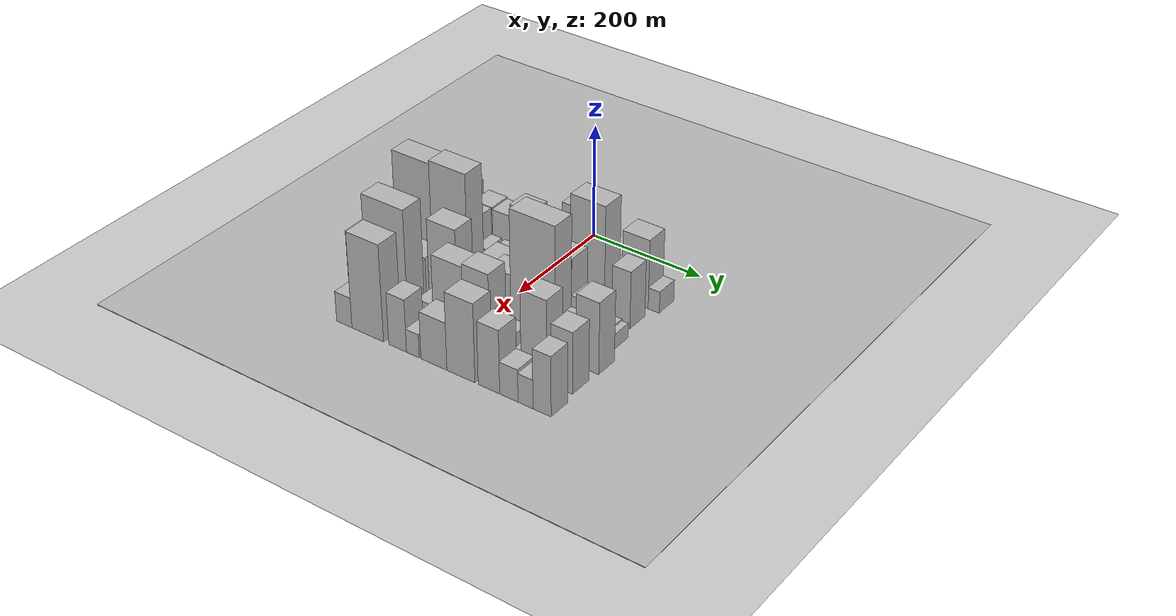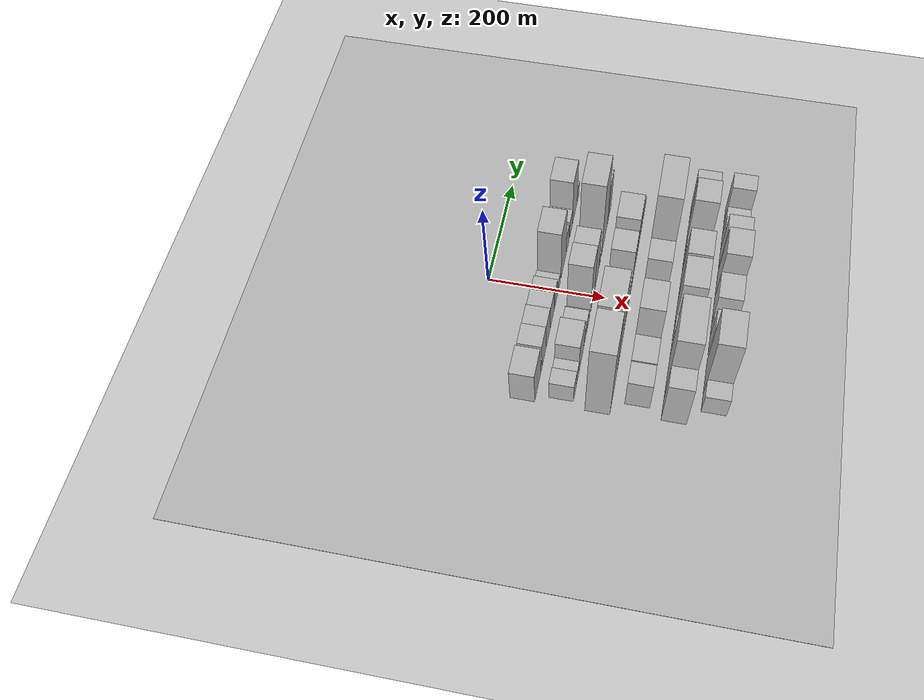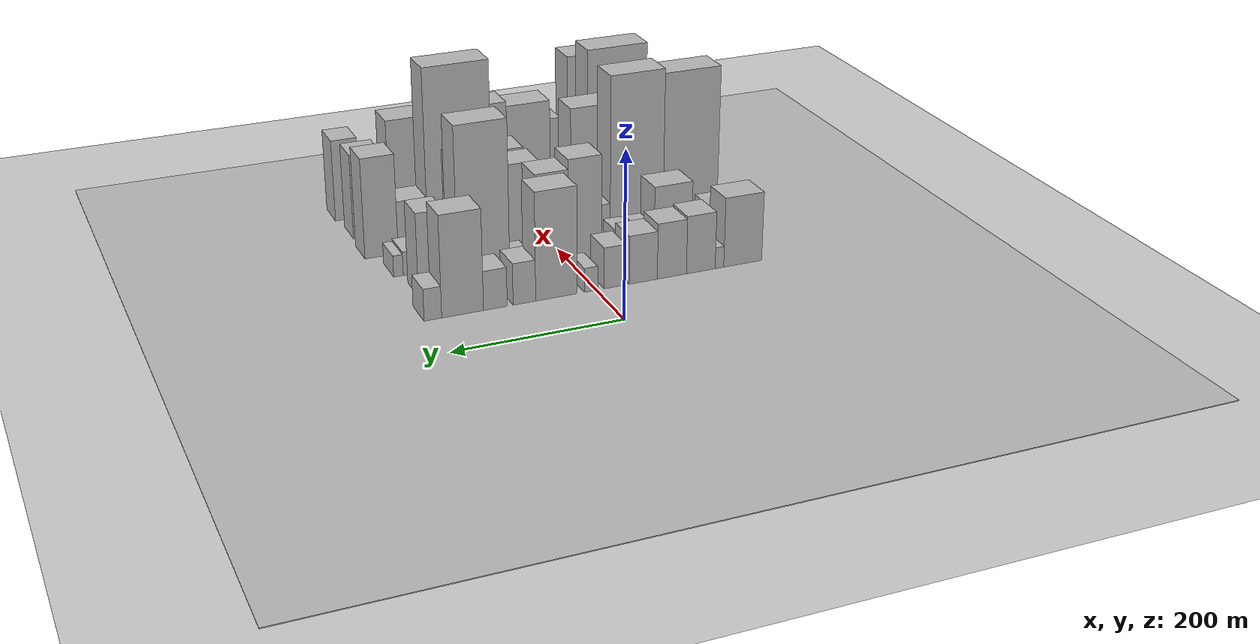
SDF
<sdf version="1.6">
 <world name="default">
  <include><name>ground_plane_1</name><uri>model://HANNAS_ground_plane</uri></include>
  <include>
   <name>ground_plane_2</name>
   <uri>model://HANNAS_ground_plane</uri>
   <pose>100 0 0  0 0 0</pose>
  </include>
  <model name="building_25">
   <static>1</static>
   <pose>100.0000 -183.9872 0 0.000000 0.000000 0.000000</pose>
   <link name="link">
    <pose>0 0 43.50 0 0 0</pose>
    <collision name="collision"><geometry><box><size>40.0000 49.1678 87.0000</size></box></geometry></collision>
    <visual name="visual">
     <cast_shadows>0</cast_shadows>
     <geometry><box><size>40.0000 49.1678 87.0000</size></box></geometry>
     <material>
      <script>
       <uri>model://HANNAS_wall/materials/scripts</uri>
       <uri>model://HANNAS_wall/materials/textures</uri>
       <name>vrc/HANNAS_wall</name>
      </script>
     </material>
    </visual>
   </link>
  </model>
  <model name="building_26">
   <static>1</static>
   <pose>100.0000 -153.9089 0 0.000000 0.000000 0.000000</pose>
   <link name="link">
    <pose>0 0 13.50 0 0 0</pose>
    <collision name="collision"><geometry><box><size>40.0000 10.9887 27.0000</size></box></geometry></collision>
    <visual name="visual">
     <cast_shadows>0</cast_shadows>
     <geometry><box><size>40.0000 10.9887 27.0000</size></box></geometry>
     <material>
      <script>
       <uri>model://HANNAS_wall/materials/scripts</uri>
       <uri>model://HANNAS_wall/materials/textures</uri>
       <name>vrc/HANNAS_wall</name>
      </script>
     </material>
    </visual>
   </link>
  </model>
  <model name="building_27">
   <static>1</static>
   <pose>100.0000 -130.0910 0 0.000000 0.000000 0.000000</pose>
   <link name="link">
    <pose>0 0 36.00 0 0 0</pose>
    <collision name="collision"><geometry><box><size>40.0000 36.6471 72.0000</size></box></geometry></collision>
    <visual name="visual">
     <cast_shadows>0</cast_shadows>
     <geometry><box><size>40.0000 36.6471 72.0000</size></box></geometry>
     <material>
      <script>
       <uri>model://HANNAS_wall/materials/scripts</uri>
       <uri>model://HANNAS_wall/materials/textures</uri>
       <name>vrc/HANNAS_wall</name>
      </script>
     </material>
    </visual>
   </link>
  </model>
  <model name="building_28">
   <static>1</static>
   <pose>100.0000 -93.4627 0 0.000000 0.000000 0.000000</pose>
   <link name="link">
    <pose>0 0 34.50 0 0 0</pose>
    <collision name="collision"><geometry><box><size>40.0000 36.6096 69.0000</size></box></geometry></collision>
    <visual name="visual">
     <cast_shadows>0</cast_shadows>
     <geometry><box><size>40.0000 36.6096 69.0000</size></box></geometry>
     <material>
      <script>
       <uri>model://HANNAS_wall/materials/scripts</uri>
       <uri>model://HANNAS_wall/materials/textures</uri>
       <name>vrc/HANNAS_wall</name>
      </script>
     </material>
    </visual>
   </link>
  </model>
  <model name="building_29">
   <static>1</static>
   <pose>100.0000 -57.6574 0 0.000000 0.000000 0.000000</pose>
   <link name="link">
    <pose>0 0 30.00 0 0 0</pose>
    <collision name="collision"><geometry><box><size>40.0000 35.0009 60.0000</size></box></geometry></collision>
    <visual name="visual">
     <cast_shadows>0</cast_shadows>
     <geometry><box><size>40.0000 35.0009 60.0000</size></box></geometry>
     <material>
      <script>
       <uri>model://HANNAS_wall/materials/scripts</uri>
       <uri>model://HANNAS_wall/materials/textures</uri>
       <name>vrc/HANNAS_wall</name>
      </script>
     </material>
    </visual>
   </link>
  </model>
  <model name="building_30">
   <static>1</static>
   <pose>100.0000 -22.7668 0 0.000000 0.000000 0.000000</pose>
   <link name="link">
    <pose>0 0 25.50 0 0 0</pose>
    <collision name="collision"><geometry><box><size>40.0000 26.7801 51.0000</size></box></geometry></collision>
    <visual name="visual">
     <cast_shadows>0</cast_shadows>
     <geometry><box><size>40.0000 26.7801 51.0000</size></box></geometry>
     <material>
      <script>
       <uri>model://HANNAS_wall/materials/scripts</uri>
       <uri>model://HANNAS_wall/materials/textures</uri>
       <name>vrc/HANNAS_wall</name>
      </script>
     </material>
    </visual>
   </link>
  </model>
  <model name="building_31">
   <static>1</static>
   <pose>100.0000 6.6735 0 0.000000 0.000000 0.000000</pose>
   <link name="link">
    <pose>0 0 15.00 0 0 0</pose>
    <collision name="collision"><geometry><box><size>40.0000 16.1005 30.0000</size></box></geometry></collision>
    <visual name="visual">
     <cast_shadows>0</cast_shadows>
     <geometry><box><size>40.0000 16.1005 30.0000</size></box></geometry>
     <material>
      <script>
       <uri>model://HANNAS_wall/materials/scripts</uri>
       <uri>model://HANNAS_wall/materials/textures</uri>
       <name>vrc/HANNAS_wall</name>
      </script>
     </material>
    </visual>
   </link>
  </model>
  <model name="building_32">
   <static>1</static>
   <pose>100.0000 48.6049 0 0.000000 0.000000 0.000000</pose>
   <link name="link">
    <pose>0 0 66.00 0 0 0</pose>
    <collision name="collision"><geometry><box><size>40.0000 49.7623 132.0000</size></box></geometry></collision>
    <visual name="visual">
     <cast_shadows>0</cast_shadows>
     <geometry><box><size>40.0000 49.7623 132.0000</size></box></geometry>
     <material>
      <script>
       <uri>model://HANNAS_wall/materials/scripts</uri>
       <uri>model://HANNAS_wall/materials/textures</uri>
       <name>vrc/HANNAS_wall</name>
      </script>
     </material>
    </visual>
   </link>
  </model>
  <model name="building_33">
   <static>1</static>
   <pose>100.0000 86.8813 0 0.000000 0.000000 0.000000</pose>
   <link name="link">
    <pose>0 0 25.50 0 0 0</pose>
    <collision name="collision"><geometry><box><size>40.0000 26.7904 51.0000</size></box></geometry></collision>
    <visual name="visual">
     <cast_shadows>0</cast_shadows>
     <geometry><box><size>40.0000 26.7904 51.0000</size></box></geometry>
     <material>
      <script>
       <uri>model://HANNAS_wall/materials/scripts</uri>
       <uri>model://HANNAS_wall/materials/textures</uri>
       <name>vrc/HANNAS_wall</name>
      </script>
     </material>
    </visual>
   </link>
  </model>
  <model name="building_34">
   <static>1</static>
   <pose>100.0000 121.1763 0 0.000000 0.000000 0.000000</pose>
   <link name="link">
    <pose>0 0 24.00 0 0 0</pose>
    <collision name="collision"><geometry><box><size>40.0000 27.7996 48.0000</size></box></geometry></collision>
    <visual name="visual">
     <cast_shadows>0</cast_shadows>
     <geometry><box><size>40.0000 27.7996 48.0000</size></box></geometry>
     <material>
      <script>
       <uri>model://HANNAS_wall/materials/scripts</uri>
       <uri>model://HANNAS_wall/materials/textures</uri>
       <name>vrc/HANNAS_wall</name>
      </script>
     </material>
    </visual>
   </link>
  </model>
  <model name="building_35">
   <static>1</static>
   <pose>100.0000 159.3019 0 0.000000 0.000000 0.000000</pose>
   <link name="link">
    <pose>0 0 61.50 0 0 0</pose>
    <collision name="collision"><geometry><box><size>40.0000 48.4516 123.0000</size></box></geometry></collision>
    <visual name="visual">
     <cast_shadows>0</cast_shadows>
     <geometry><box><size>40.0000 48.4516 123.0000</size></box></geometry>
     <material>
      <script>
       <uri>model://HANNAS_wall/materials/scripts</uri>
       <uri>model://HANNAS_wall/materials/textures</uri>
       <name>vrc/HANNAS_wall</name>
      </script>
     </material>
    </visual>
   </link>
  </model>
  <model name="building_36">
   <static>1</static>
   <pose>100.0000 193.6291 0 0.000000 0.000000 0.000000</pose>
   <link name="link">
    <pose>0 0 19.50 0 0 0</pose>
    <collision name="collision"><geometry><box><size>40.0000 20.2027 39.0000</size></box></geometry></collision>
    <visual name="visual">
     <cast_shadows>0</cast_shadows>
     <geometry><box><size>40.0000 20.2027 39.0000</size></box></geometry>
     <material>
      <script>
       <uri>model://HANNAS_wall/materials/scripts</uri>
       <uri>model://HANNAS_wall/materials/textures</uri>
       <name>vrc/HANNAS_wall</name>
      </script>
     </material>
    </visual>
   </link>
  </model>
  <model name="building_82">
   <static>1</static>
   <pose>160.0000 -182.8963 0 0.000000 0.000000 0.000000</pose>
   <link name="link">
    <pose>0 0 25.50 0 0 0</pose>
    <collision name="collision"><geometry><box><size>40.0000 27.9101 51.0000</size></box></geometry></collision>
    <visual name="visual">
     <cast_shadows>0</cast_shadows>
     <geometry><box><size>40.0000 27.9101 51.0000</size></box></geometry>
     <material>
      <script>
       <uri>model://HANNAS_wall/materials/scripts</uri>
       <uri>model://HANNAS_wall/materials/textures</uri>
       <name>vrc/HANNAS_wall</name>
      </script>
     </material>
    </visual>
   </link>
  </model>
  <model name="building_83">
   <static>1</static>
   <pose>160.0000 -157.7309 0 0.000000 0.000000 0.000000</pose>
   <link name="link">
    <pose>0 0 21.00 0 0 0</pose>
    <collision name="collision"><geometry><box><size>40.0000 22.4206 42.0000</size></box></geometry></collision>
    <visual name="visual">
     <cast_shadows>0</cast_shadows>
     <geometry><box><size>40.0000 22.4206 42.0000</size></box></geometry>
     <material>
      <script>
       <uri>model://HANNAS_wall/materials/scripts</uri>
       <uri>model://HANNAS_wall/materials/textures</uri>
       <name>vrc/HANNAS_wall</name>
      </script>
     </material>
    </visual>
   </link>
  </model>
  <model name="building_84">
   <static>1</static>
   <pose>160.0000 -122.2274 0 0.000000 0.000000 0.000000</pose>
   <link name="link">
    <pose>0 0 43.50 0 0 0</pose>
    <collision name="collision"><geometry><box><size>40.0000 48.5863 87.0000</size></box></geometry></collision>
    <visual name="visual">
     <cast_shadows>0</cast_shadows>
     <geometry><box><size>40.0000 48.5863 87.0000</size></box></geometry>
     <material>
      <script>
       <uri>model://HANNAS_wall/materials/scripts</uri>
       <uri>model://HANNAS_wall/materials/textures</uri>
       <name>vrc/HANNAS_wall</name>
      </script>
     </material>
    </visual>
   </link>
  </model>
  <model name="building_85">
   <static>1</static>
   <pose>160.0000 -87.8632 0 0.000000 0.000000 0.000000</pose>
   <link name="link">
    <pose>0 0 19.50 0 0 0</pose>
    <collision name="collision"><geometry><box><size>40.0000 20.1421 39.0000</size></box></geometry></collision>
    <visual name="visual">
     <cast_shadows>0</cast_shadows>
     <geometry><box><size>40.0000 20.1421 39.0000</size></box></geometry>
     <material>
      <script>
       <uri>model://HANNAS_wall/materials/scripts</uri>
       <uri>model://HANNAS_wall/materials/textures</uri>
       <name>vrc/HANNAS_wall</name>
      </script>
     </material>
    </visual>
   </link>
  </model>
  <model name="building_86">
   <static>1</static>
   <pose>160.0000 -60.9558 0 0.000000 0.000000 0.000000</pose>
   <link name="link">
    <pose>0 0 19.50 0 0 0</pose>
    <collision name="collision"><geometry><box><size>40.0000 21.6727 39.0000</size></box></geometry></collision>
    <visual name="visual">
     <cast_shadows>0</cast_shadows>
     <geometry><box><size>40.0000 21.6727 39.0000</size></box></geometry>
     <material>
      <script>
       <uri>model://HANNAS_wall/materials/scripts</uri>
       <uri>model://HANNAS_wall/materials/textures</uri>
       <name>vrc/HANNAS_wall</name>
      </script>
     </material>
    </visual>
   </link>
  </model>
  <model name="building_87">
   <static>1</static>
   <pose>160.0000 -45.2092 0 0.000000 0.000000 0.000000</pose>
   <link name="link">
    <pose>0 0 12.00 0 0 0</pose>
    <collision name="collision"><geometry><box><size>40.0000 9.8205 24.0000</size></box></geometry></collision>
    <visual name="visual">
     <cast_shadows>0</cast_shadows>
     <geometry><box><size>40.0000 9.8205 24.0000</size></box></geometry>
     <material>
      <script>
       <uri>model://HANNAS_wall/materials/scripts</uri>
       <uri>model://HANNAS_wall/materials/textures</uri>
       <name>vrc/HANNAS_wall</name>
      </script>
     </material>
    </visual>
   </link>
  </model>
  <model name="building_88">
   <static>1</static>
   <pose>160.0000 -10.5048 0 0.000000 0.000000 0.000000</pose>
   <link name="link">
    <pose>0 0 69.00 0 0 0</pose>
    <collision name="collision"><geometry><box><size>40.0000 41.5882 138.0000</size></box></geometry></collision>
    <visual name="visual">
     <cast_shadows>0</cast_shadows>
     <geometry><box><size>40.0000 41.5882 138.0000</size></box></geometry>
     <material>
      <script>
       <uri>model://HANNAS_wall/materials/scripts</uri>
       <uri>model://HANNAS_wall/materials/textures</uri>
       <name>vrc/HANNAS_wall</name>
      </script>
     </material>
    </visual>
   </link>
  </model>
  <model name="building_89">
   <static>1</static>
   <pose>160.0000 30.4153 0 0.000000 0.000000 0.000000</pose>
   <link name="link">
    <pose>0 0 63.00 0 0 0</pose>
    <collision name="collision"><geometry><box><size>40.0000 40.2521 126.0000</size></box></geometry></collision>
    <visual name="visual">
     <cast_shadows>0</cast_shadows>
     <geometry><box><size>40.0000 40.2521 126.0000</size></box></geometry>
     <material>
      <script>
       <uri>model://HANNAS_wall/materials/scripts</uri>
       <uri>model://HANNAS_wall/materials/textures</uri>
       <name>vrc/HANNAS_wall</name>
      </script>
     </material>
    </visual>
   </link>
  </model>
  <model name="building_90">
   <static>1</static>
   <pose>160.0000 64.2063 0 0.000000 0.000000 0.000000</pose>
   <link name="link">
    <pose>0 0 15.00 0 0 0</pose>
    <collision name="collision"><geometry><box><size>40.0000 17.3297 30.0000</size></box></geometry></collision>
    <visual name="visual">
     <cast_shadows>0</cast_shadows>
     <geometry><box><size>40.0000 17.3297 30.0000</size></box></geometry>
     <material>
      <script>
       <uri>model://HANNAS_wall/materials/scripts</uri>
       <uri>model://HANNAS_wall/materials/textures</uri>
       <name>vrc/HANNAS_wall</name>
      </script>
     </material>
    </visual>
   </link>
  </model>
  <model name="building_91">
   <static>1</static>
   <pose>160.0000 113.0793 0 0.000000 0.000000 0.000000</pose>
   <link name="link">
    <pose>0 0 99.00 0 0 0</pose>
    <collision name="collision"><geometry><box><size>40.0000 62.4163 198.0000</size></box></geometry></collision>
    <visual name="visual">
     <cast_shadows>0</cast_shadows>
     <geometry><box><size>40.0000 62.4163 198.0000</size></box></geometry>
     <material>
      <script>
       <uri>model://HANNAS_wall/materials/scripts</uri>
       <uri>model://HANNAS_wall/materials/textures</uri>
       <name>vrc/HANNAS_wall</name>
      </script>
     </material>
    </visual>
   </link>
  </model>
  <model name="building_92">
   <static>1</static>
   <pose>160.0000 152.6669 0 0.000000 0.000000 0.000000</pose>
   <link name="link">
    <pose>0 0 12.00 0 0 0</pose>
    <collision name="collision"><geometry><box><size>40.0000 10.7589 24.0000</size></box></geometry></collision>
    <visual name="visual">
     <cast_shadows>0</cast_shadows>
     <geometry><box><size>40.0000 10.7589 24.0000</size></box></geometry>
     <material>
      <script>
       <uri>model://HANNAS_wall/materials/scripts</uri>
       <uri>model://HANNAS_wall/materials/textures</uri>
       <name>vrc/HANNAS_wall</name>
      </script>
     </material>
    </visual>
   </link>
  </model>
  <model name="building_93">
   <static>1</static>
   <pose>160.0000 174.5098 0 0.000000 0.000000 0.000000</pose>
   <link name="link">
    <pose>0 0 51.00 0 0 0</pose>
    <collision name="collision"><geometry><box><size>40.0000 32.9269 102.0000</size></box></geometry></collision>
    <visual name="visual">
     <cast_shadows>0</cast_shadows>
     <geometry><box><size>40.0000 32.9269 102.0000</size></box></geometry>
     <material>
      <script>
       <uri>model://HANNAS_wall/materials/scripts</uri>
       <uri>model://HANNAS_wall/materials/textures</uri>
       <name>vrc/HANNAS_wall</name>
      </script>
     </material>
    </visual>
   </link>
  </model>
  <model name="building_137">
   <static>1</static>
   <pose>220.0000 -172.5578 0 0.000000 0.000000 0.000000</pose>
   <link name="link">
    <pose>0 0 100.50 0 0 0</pose>
    <collision name="collision"><geometry><box><size>40.0000 72.0038 201.0000</size></box></geometry></collision>
    <visual name="visual">
     <cast_shadows>0</cast_shadows>
     <geometry><box><size>40.0000 72.0038 201.0000</size></box></geometry>
     <material>
      <script>
       <uri>model://HANNAS_wall/materials/scripts</uri>
       <uri>model://HANNAS_wall/materials/textures</uri>
       <name>vrc/HANNAS_wall</name>
      </script>
     </material>
    </visual>
   </link>
  </model>
  <model name="building_138">
   <static>1</static>
   <pose>220.0000 -102.0836 0 0.000000 0.000000 0.000000</pose>
   <link name="link">
    <pose>0 0 103.50 0 0 0</pose>
    <collision name="collision"><geometry><box><size>40.0000 68.9446 207.0000</size></box></geometry></collision>
    <visual name="visual">
     <cast_shadows>0</cast_shadows>
     <geometry><box><size>40.0000 68.9446 207.0000</size></box></geometry>
     <material>
      <script>
       <uri>model://HANNAS_wall/materials/scripts</uri>
       <uri>model://HANNAS_wall/materials/textures</uri>
       <name>vrc/HANNAS_wall</name>
      </script>
     </material>
    </visual>
   </link>
  </model>
  <model name="building_139">
   <static>1</static>
   <pose>220.0000 -54.1604 0 0.000000 0.000000 0.000000</pose>
   <link name="link">
    <pose>0 0 24.00 0 0 0</pose>
    <collision name="collision"><geometry><box><size>40.0000 26.9018 48.0000</size></box></geometry></collision>
    <visual name="visual">
     <cast_shadows>0</cast_shadows>
     <geometry><box><size>40.0000 26.9018 48.0000</size></box></geometry>
     <material>
      <script>
       <uri>model://HANNAS_wall/materials/scripts</uri>
       <uri>model://HANNAS_wall/materials/textures</uri>
       <name>vrc/HANNAS_wall</name>
      </script>
     </material>
    </visual>
   </link>
  </model>
  <model name="building_140">
   <static>1</static>
   <pose>220.0000 -20.4770 0 0.000000 0.000000 0.000000</pose>
   <link name="link">
    <pose>0 0 39.00 0 0 0</pose>
    <collision name="collision"><geometry><box><size>40.0000 40.4650 78.0000</size></box></geometry></collision>
    <visual name="visual">
     <cast_shadows>0</cast_shadows>
     <geometry><box><size>40.0000 40.4650 78.0000</size></box></geometry>
     <material>
      <script>
       <uri>model://HANNAS_wall/materials/scripts</uri>
       <uri>model://HANNAS_wall/materials/textures</uri>
       <name>vrc/HANNAS_wall</name>
      </script>
     </material>
    </visual>
   </link>
  </model>
  <model name="building_141">
   <static>1</static>
   <pose>220.0000 12.1507 0 0.000000 0.000000 0.000000</pose>
   <link name="link">
    <pose>0 0 10.50 0 0 0</pose>
    <collision name="collision"><geometry><box><size>40.0000 8.7904 21.0000</size></box></geometry></collision>
    <visual name="visual">
     <cast_shadows>0</cast_shadows>
     <geometry><box><size>40.0000 8.7904 21.0000</size></box></geometry>
     <material>
      <script>
       <uri>model://HANNAS_wall/materials/scripts</uri>
       <uri>model://HANNAS_wall/materials/textures</uri>
       <name>vrc/HANNAS_wall</name>
      </script>
     </material>
    </visual>
   </link>
  </model>
  <model name="building_142">
   <static>1</static>
   <pose>220.0000 43.4058 0 0.000000 0.000000 0.000000</pose>
   <link name="link">
    <pose>0 0 58.50 0 0 0</pose>
    <collision name="collision"><geometry><box><size>40.0000 41.7199 117.0000</size></box></geometry></collision>
    <visual name="visual">
     <cast_shadows>0</cast_shadows>
     <geometry><box><size>40.0000 41.7199 117.0000</size></box></geometry>
     <material>
      <script>
       <uri>model://HANNAS_wall/materials/scripts</uri>
       <uri>model://HANNAS_wall/materials/textures</uri>
       <name>vrc/HANNAS_wall</name>
      </script>
     </material>
    </visual>
   </link>
  </model>
  <model name="building_143">
   <static>1</static>
   <pose>220.0000 69.8577 0 0.000000 0.000000 0.000000</pose>
   <link name="link">
    <pose>0 0 13.50 0 0 0</pose>
    <collision name="collision"><geometry><box><size>40.0000 11.1839 27.0000</size></box></geometry></collision>
    <visual name="visual">
     <cast_shadows>0</cast_shadows>
     <geometry><box><size>40.0000 11.1839 27.0000</size></box></geometry>
     <material>
      <script>
       <uri>model://HANNAS_wall/materials/scripts</uri>
       <uri>model://HANNAS_wall/materials/textures</uri>
       <name>vrc/HANNAS_wall</name>
      </script>
     </material>
    </visual>
   </link>
  </model>
  <model name="building_144">
   <static>1</static>
   <pose>220.0000 101.0948 0 0.000000 0.000000 0.000000</pose>
   <link name="link">
    <pose>0 0 66.00 0 0 0</pose>
    <collision name="collision"><geometry><box><size>40.0000 51.2902 132.0000</size></box></geometry></collision>
    <visual name="visual">
     <cast_shadows>0</cast_shadows>
     <geometry><box><size>40.0000 51.2902 132.0000</size></box></geometry>
     <material>
      <script>
       <uri>model://HANNAS_wall/materials/scripts</uri>
       <uri>model://HANNAS_wall/materials/textures</uri>
       <name>vrc/HANNAS_wall</name>
      </script>
     </material>
    </visual>
   </link>
  </model>
  <model name="building_145">
   <static>1</static>
   <pose>220.0000 145.7278 0 0.000000 0.000000 0.000000</pose>
   <link name="link">
    <pose>0 0 34.50 0 0 0</pose>
    <collision name="collision"><geometry><box><size>40.0000 37.9758 69.0000</size></box></geometry></collision>
    <visual name="visual">
     <cast_shadows>0</cast_shadows>
     <geometry><box><size>40.0000 37.9758 69.0000</size></box></geometry>
     <material>
      <script>
       <uri>model://HANNAS_wall/materials/scripts</uri>
       <uri>model://HANNAS_wall/materials/textures</uri>
       <name>vrc/HANNAS_wall</name>
      </script>
     </material>
    </visual>
   </link>
  </model>
  <model name="building_146">
   <static>1</static>
   <pose>220.0000 181.9038 0 0.000000 0.000000 0.000000</pose>
   <link name="link">
    <pose>0 0 15.00 0 0 0</pose>
    <collision name="collision"><geometry><box><size>40.0000 16.3762 30.0000</size></box></geometry></collision>
    <visual name="visual">
     <cast_shadows>0</cast_shadows>
     <geometry><box><size>40.0000 16.3762 30.0000</size></box></geometry>
     <material>
      <script>
       <uri>model://HANNAS_wall/materials/scripts</uri>
       <uri>model://HANNAS_wall/materials/textures</uri>
       <name>vrc/HANNAS_wall</name>
      </script>
     </material>
    </visual>
   </link>
  </model>
  <model name="building_147">
   <static>1</static>
   <pose>220.0000 195.8134 0 0.000000 0.000000 0.000000</pose>
   <link name="link">
    <pose>0 0 13.50 0 0 0</pose>
    <collision name="collision"><geometry><box><size>40.0000 11.4429 27.0000</size></box></geometry></collision>
    <visual name="visual">
     <cast_shadows>0</cast_shadows>
     <geometry><box><size>40.0000 11.4429 27.0000</size></box></geometry>
     <material>
      <script>
       <uri>model://HANNAS_wall/materials/scripts</uri>
       <uri>model://HANNAS_wall/materials/textures</uri>
       <name>vrc/HANNAS_wall</name>
      </script>
     </material>
    </visual>
   </link>
  </model>
  <model name="building_190">
   <static>1</static>
   <pose>280.0000 -166.5351 0 0.000000 0.000000 0.000000</pose>
   <link name="link">
    <pose>0 0 37.50 0 0 0</pose>
    <collision name="collision"><geometry><box><size>40.0000 38.1876 75.0000</size></box></geometry></collision>
    <visual name="visual">
     <cast_shadows>0</cast_shadows>
     <geometry><box><size>40.0000 38.1876 75.0000</size></box></geometry>
     <material>
      <script>
       <uri>model://HANNAS_wall/materials/scripts</uri>
       <uri>model://HANNAS_wall/materials/textures</uri>
       <name>vrc/HANNAS_wall</name>
      </script>
     </material>
    </visual>
   </link>
  </model>
  <model name="building_191">
   <static>1</static>
   <pose>280.0000 -124.1288 0 0.000000 0.000000 0.000000</pose>
   <link name="link">
    <pose>0 0 39.00 0 0 0</pose>
    <collision name="collision"><geometry><box><size>40.0000 46.6250 78.0000</size></box></geometry></collision>
    <visual name="visual">
     <cast_shadows>0</cast_shadows>
     <geometry><box><size>40.0000 46.6250 78.0000</size></box></geometry>
     <material>
      <script>
       <uri>model://HANNAS_wall/materials/scripts</uri>
       <uri>model://HANNAS_wall/materials/textures</uri>
       <name>vrc/HANNAS_wall</name>
      </script>
     </material>
    </visual>
   </link>
  </model>
  <model name="building_192">
   <static>1</static>
   <pose>280.0000 -68.1328 0 0.000000 0.000000 0.000000</pose>
   <link name="link">
    <pose>0 0 75.00 0 0 0</pose>
    <collision name="collision"><geometry><box><size>40.0000 53.3670 150.0000</size></box></geometry></collision>
    <visual name="visual">
     <cast_shadows>0</cast_shadows>
     <geometry><box><size>40.0000 53.3670 150.0000</size></box></geometry>
     <material>
      <script>
       <uri>model://HANNAS_wall/materials/scripts</uri>
       <uri>model://HANNAS_wall/materials/textures</uri>
       <name>vrc/HANNAS_wall</name>
      </script>
     </material>
    </visual>
   </link>
  </model>
  <model name="building_193">
   <static>1</static>
   <pose>280.0000 -24.0288 0 0.000000 0.000000 0.000000</pose>
   <link name="link">
    <pose>0 0 22.50 0 0 0</pose>
    <collision name="collision"><geometry><box><size>40.0000 22.8409 45.0000</size></box></geometry></collision>
    <visual name="visual">
     <cast_shadows>0</cast_shadows>
     <geometry><box><size>40.0000 22.8409 45.0000</size></box></geometry>
     <material>
      <script>
       <uri>model://HANNAS_wall/materials/scripts</uri>
       <uri>model://HANNAS_wall/materials/textures</uri>
       <name>vrc/HANNAS_wall</name>
      </script>
     </material>
    </visual>
   </link>
  </model>
  <model name="building_194">
   <static>1</static>
   <pose>280.0000 0.9178 0 0.000000 0.000000 0.000000</pose>
   <link name="link">
    <pose>0 0 27.00 0 0 0</pose>
    <collision name="collision"><geometry><box><size>40.0000 27.0524 54.0000</size></box></geometry></collision>
    <visual name="visual">
     <cast_shadows>0</cast_shadows>
     <geometry><box><size>40.0000 27.0524 54.0000</size></box></geometry>
     <material>
      <script>
       <uri>model://HANNAS_wall/materials/scripts</uri>
       <uri>model://HANNAS_wall/materials/textures</uri>
       <name>vrc/HANNAS_wall</name>
      </script>
     </material>
    </visual>
   </link>
  </model>
  <model name="building_195">
   <static>1</static>
   <pose>280.0000 39.6602 0 0.000000 0.000000 0.000000</pose>
   <link name="link">
    <pose>0 0 55.50 0 0 0</pose>
    <collision name="collision"><geometry><box><size>40.0000 40.4323 111.0000</size></box></geometry></collision>
    <visual name="visual">
     <cast_shadows>0</cast_shadows>
     <geometry><box><size>40.0000 40.4323 111.0000</size></box></geometry>
     <material>
      <script>
       <uri>model://HANNAS_wall/materials/scripts</uri>
       <uri>model://HANNAS_wall/materials/textures</uri>
       <name>vrc/HANNAS_wall</name>
      </script>
     </material>
    </visual>
   </link>
  </model>
  <model name="building_196">
   <static>1</static>
   <pose>280.0000 100.2851 0 0.000000 0.000000 0.000000</pose>
   <link name="link">
    <pose>0 0 112.50 0 0 0</pose>
    <collision name="collision"><geometry><box><size>40.0000 80.8175 225.0000</size></box></geometry></collision>
    <visual name="visual">
     <cast_shadows>0</cast_shadows>
     <geometry><box><size>40.0000 80.8175 225.0000</size></box></geometry>
     <material>
      <script>
       <uri>model://HANNAS_wall/materials/scripts</uri>
       <uri>model://HANNAS_wall/materials/textures</uri>
       <name>vrc/HANNAS_wall</name>
      </script>
     </material>
    </visual>
   </link>
  </model>
  <model name="building_197">
   <static>1</static>
   <pose>280.0000 159.1217 0 0.000000 0.000000 0.000000</pose>
   <link name="link">
    <pose>0 0 33.00 0 0 0</pose>
    <collision name="collision"><geometry><box><size>40.0000 36.8557 66.0000</size></box></geometry></collision>
    <visual name="visual">
     <cast_shadows>0</cast_shadows>
     <geometry><box><size>40.0000 36.8557 66.0000</size></box></geometry>
     <material>
      <script>
       <uri>model://HANNAS_wall/materials/scripts</uri>
       <uri>model://HANNAS_wall/materials/textures</uri>
       <name>vrc/HANNAS_wall</name>
      </script>
     </material>
    </visual>
   </link>
  </model>
  <model name="building_198">
   <static>1</static>
   <pose>280.0000 197.8304 0 0.000000 0.000000 0.000000</pose>
   <link name="link">
    <pose>0 0 63.00 0 0 0</pose>
    <collision name="collision"><geometry><box><size>40.0000 40.5616 126.0000</size></box></geometry></collision>
    <visual name="visual">
     <cast_shadows>0</cast_shadows>
     <geometry><box><size>40.0000 40.5616 126.0000</size></box></geometry>
     <material>
      <script>
       <uri>model://HANNAS_wall/materials/scripts</uri>
       <uri>model://HANNAS_wall/materials/textures</uri>
       <name>vrc/HANNAS_wall</name>
      </script>
     </material>
    </visual>
   </link>
  </model>
  <model name="building_240">
   <static>1</static>
   <pose>340.0000 -184.9934 0 0.000000 0.000000 0.000000</pose>
   <link name="link">
    <pose>0 0 60.00 0 0 0</pose>
    <collision name="collision"><geometry><box><size>40.0000 36.0682 120.0000</size></box></geometry></collision>
    <visual name="visual">
     <cast_shadows>0</cast_shadows>
     <geometry><box><size>40.0000 36.0682 120.0000</size></box></geometry>
     <material>
      <script>
       <uri>model://HANNAS_wall/materials/scripts</uri>
       <uri>model://HANNAS_wall/materials/textures</uri>
       <name>vrc/HANNAS_wall</name>
      </script>
     </material>
    </visual>
   </link>
  </model>
  <model name="building_241">
   <static>1</static>
   <pose>340.0000 -127.4728 0 0.000000 0.000000 0.000000</pose>
   <link name="link">
    <pose>0 0 99.00 0 0 0</pose>
    <collision name="collision"><geometry><box><size>40.0000 78.9730 198.0000</size></box></geometry></collision>
    <visual name="visual">
     <cast_shadows>0</cast_shadows>
     <geometry><box><size>40.0000 78.9730 198.0000</size></box></geometry>
     <material>
      <script>
       <uri>model://HANNAS_wall/materials/scripts</uri>
       <uri>model://HANNAS_wall/materials/textures</uri>
       <name>vrc/HANNAS_wall</name>
      </script>
     </material>
    </visual>
   </link>
  </model>
  <model name="building_242">
   <static>1</static>
   <pose>340.0000 -82.2673 0 0.000000 0.000000 0.000000</pose>
   <link name="link">
    <pose>0 0 12.00 0 0 0</pose>
    <collision name="collision"><geometry><box><size>40.0000 11.4379 24.0000</size></box></geometry></collision>
    <visual name="visual">
     <cast_shadows>0</cast_shadows>
     <geometry><box><size>40.0000 11.4379 24.0000</size></box></geometry>
     <material>
      <script>
       <uri>model://HANNAS_wall/materials/scripts</uri>
       <uri>model://HANNAS_wall/materials/textures</uri>
       <name>vrc/HANNAS_wall</name>
      </script>
     </material>
    </visual>
   </link>
  </model>
  <model name="building_243">
   <static>1</static>
   <pose>340.0000 -53.3140 0 0.000000 0.000000 0.000000</pose>
   <link name="link">
    <pose>0 0 25.50 0 0 0</pose>
    <collision name="collision"><geometry><box><size>40.0000 30.4687 51.0000</size></box></geometry></collision>
    <visual name="visual">
     <cast_shadows>0</cast_shadows>
     <geometry><box><size>40.0000 30.4687 51.0000</size></box></geometry>
     <material>
      <script>
       <uri>model://HANNAS_wall/materials/scripts</uri>
       <uri>model://HANNAS_wall/materials/textures</uri>
       <name>vrc/HANNAS_wall</name>
      </script>
     </material>
    </visual>
   </link>
  </model>
  <model name="building_244">
   <static>1</static>
   <pose>340.0000 -10.0375 0 0.000000 0.000000 0.000000</pose>
   <link name="link">
    <pose>0 0 70.50 0 0 0</pose>
    <collision name="collision"><geometry><box><size>40.0000 56.0843 141.0000</size></box></geometry></collision>
    <visual name="visual">
     <cast_shadows>0</cast_shadows>
     <geometry><box><size>40.0000 56.0843 141.0000</size></box></geometry>
     <material>
      <script>
       <uri>model://HANNAS_wall/materials/scripts</uri>
       <uri>model://HANNAS_wall/materials/textures</uri>
       <name>vrc/HANNAS_wall</name>
      </script>
     </material>
    </visual>
   </link>
  </model>
  <model name="building_245">
   <static>1</static>
   <pose>340.0000 42.0665 0 0.000000 0.000000 0.000000</pose>
   <link name="link">
    <pose>0 0 73.50 0 0 0</pose>
    <collision name="collision"><geometry><box><size>40.0000 48.1237 147.0000</size></box></geometry></collision>
    <visual name="visual">
     <cast_shadows>0</cast_shadows>
     <geometry><box><size>40.0000 48.1237 147.0000</size></box></geometry>
     <material>
      <script>
       <uri>model://HANNAS_wall/materials/scripts</uri>
       <uri>model://HANNAS_wall/materials/textures</uri>
       <name>vrc/HANNAS_wall</name>
      </script>
     </material>
    </visual>
   </link>
  </model>
  <model name="building_246">
   <static>1</static>
   <pose>340.0000 90.7543 0 0.000000 0.000000 0.000000</pose>
   <link name="link">
    <pose>0 0 27.00 0 0 0</pose>
    <collision name="collision"><geometry><box><size>40.0000 29.2520 54.0000</size></box></geometry></collision>
    <visual name="visual">
     <cast_shadows>0</cast_shadows>
     <geometry><box><size>40.0000 29.2520 54.0000</size></box></geometry>
     <material>
      <script>
       <uri>model://HANNAS_wall/materials/scripts</uri>
       <uri>model://HANNAS_wall/materials/textures</uri>
       <name>vrc/HANNAS_wall</name>
      </script>
     </material>
    </visual>
   </link>
  </model>
  <model name="building_247">
   <static>1</static>
   <pose>340.0000 114.2577 0 0.000000 0.000000 0.000000</pose>
   <link name="link">
    <pose>0 0 15.00 0 0 0</pose>
    <collision name="collision"><geometry><box><size>40.0000 17.7548 30.0000</size></box></geometry></collision>
    <visual name="visual">
     <cast_shadows>0</cast_shadows>
     <geometry><box><size>40.0000 17.7548 30.0000</size></box></geometry>
     <material>
      <script>
       <uri>model://HANNAS_wall/materials/scripts</uri>
       <uri>model://HANNAS_wall/materials/textures</uri>
       <name>vrc/HANNAS_wall</name>
      </script>
     </material>
    </visual>
   </link>
  </model>
  <model name="building_248">
   <static>1</static>
   <pose>340.0000 145.9977 0 0.000000 0.000000 0.000000</pose>
   <link name="link">
    <pose>0 0 72.00 0 0 0</pose>
    <collision name="collision"><geometry><box><size>40.0000 45.7251 144.0000</size></box></geometry></collision>
    <visual name="visual">
     <cast_shadows>0</cast_shadows>
     <geometry><box><size>40.0000 45.7251 144.0000</size></box></geometry>
     <material>
      <script>
       <uri>model://HANNAS_wall/materials/scripts</uri>
       <uri>model://HANNAS_wall/materials/textures</uri>
       <name>vrc/HANNAS_wall</name>
      </script>
     </material>
    </visual>
   </link>
  </model>
  <model name="building_249">
   <static>1</static>
   <pose>340.0000 195.8101 0 0.000000 0.000000 0.000000</pose>
   <link name="link">
    <pose>0 0 54.00 0 0 0</pose>
    <collision name="collision"><geometry><box><size>40.0000 37.8998 108.0000</size></box></geometry></collision>
    <visual name="visual">
     <cast_shadows>0</cast_shadows>
     <geometry><box><size>40.0000 37.8998 108.0000</size></box></geometry>
     <material>
      <script>
       <uri>model://HANNAS_wall/materials/scripts</uri>
       <uri>model://HANNAS_wall/materials/textures</uri>
       <name>vrc/HANNAS_wall</name>
      </script>
     </material>
    </visual>
   </link>
  </model>
  <model name="building_293">
   <static>1</static>
   <pose>400.0000 -161.5534 0 0.000000 0.000000 0.000000</pose>
   <link name="link">
    <pose>0 0 27.00 0 0 0</pose>
    <collision name="collision"><geometry><box><size>40.0000 30.2813 54.0000</size></box></geometry></collision>
    <visual name="visual">
     <cast_shadows>0</cast_shadows>
     <geometry><box><size>40.0000 30.2813 54.0000</size></box></geometry>
     <material>
      <script>
       <uri>model://HANNAS_wall/materials/scripts</uri>
       <uri>model://HANNAS_wall/materials/textures</uri>
       <name>vrc/HANNAS_wall</name>
      </script>
     </material>
    </visual>
   </link>
  </model>
  <model name="building_294">
   <static>1</static>
   <pose>400.0000 -115.8240 0 0.000000 0.000000 0.000000</pose>
   <link name="link">
    <pose>0 0 85.50 0 0 0</pose>
    <collision name="collision"><geometry><box><size>40.0000 61.1775 171.0000</size></box></geometry></collision>
    <visual name="visual">
     <cast_shadows>0</cast_shadows>
     <geometry><box><size>40.0000 61.1775 171.0000</size></box></geometry>
     <material>
      <script>
       <uri>model://HANNAS_wall/materials/scripts</uri>
       <uri>model://HANNAS_wall/materials/textures</uri>
       <name>vrc/HANNAS_wall</name>
      </script>
     </material>
    </visual>
   </link>
  </model>
  <model name="building_295">
   <static>1</static>
   <pose>400.0000 -58.3372 0 0.000000 0.000000 0.000000</pose>
   <link name="link">
    <pose>0 0 46.50 0 0 0</pose>
    <collision name="collision"><geometry><box><size>40.0000 33.7961 93.0000</size></box></geometry></collision>
    <visual name="visual">
     <cast_shadows>0</cast_shadows>
     <geometry><box><size>40.0000 33.7961 93.0000</size></box></geometry>
     <material>
      <script>
       <uri>model://HANNAS_wall/materials/scripts</uri>
       <uri>model://HANNAS_wall/materials/textures</uri>
       <name>vrc/HANNAS_wall</name>
      </script>
     </material>
    </visual>
   </link>
  </model>
  <model name="building_296">
   <static>1</static>
   <pose>400.0000 -29.3582 0 0.000000 0.000000 0.000000</pose>
   <link name="link">
    <pose>0 0 21.00 0 0 0</pose>
    <collision name="collision"><geometry><box><size>40.0000 24.1621 42.0000</size></box></geometry></collision>
    <visual name="visual">
     <cast_shadows>0</cast_shadows>
     <geometry><box><size>40.0000 24.1621 42.0000</size></box></geometry>
     <material>
      <script>
       <uri>model://HANNAS_wall/materials/scripts</uri>
       <uri>model://HANNAS_wall/materials/textures</uri>
       <name>vrc/HANNAS_wall</name>
      </script>
     </material>
    </visual>
   </link>
  </model>
  <model name="building_297">
   <static>1</static>
   <pose>400.0000 9.9327 0 0.000000 0.000000 0.000000</pose>
   <link name="link">
    <pose>0 0 42.00 0 0 0</pose>
    <collision name="collision"><geometry><box><size>40.0000 48.4197 84.0000</size></box></geometry></collision>
    <visual name="visual">
     <cast_shadows>0</cast_shadows>
     <geometry><box><size>40.0000 48.4197 84.0000</size></box></geometry>
     <material>
      <script>
       <uri>model://HANNAS_wall/materials/scripts</uri>
       <uri>model://HANNAS_wall/materials/textures</uri>
       <name>vrc/HANNAS_wall</name>
      </script>
     </material>
    </visual>
   </link>
  </model>
  <model name="building_298">
   <static>1</static>
   <pose>400.0000 59.7652 0 0.000000 0.000000 0.000000</pose>
   <link name="link">
    <pose>0 0 69.00 0 0 0</pose>
    <collision name="collision"><geometry><box><size>40.0000 51.2453 138.0000</size></box></geometry></collision>
    <visual name="visual">
     <cast_shadows>0</cast_shadows>
     <geometry><box><size>40.0000 51.2453 138.0000</size></box></geometry>
     <material>
      <script>
       <uri>model://HANNAS_wall/materials/scripts</uri>
       <uri>model://HANNAS_wall/materials/textures</uri>
       <name>vrc/HANNAS_wall</name>
      </script>
     </material>
    </visual>
   </link>
  </model>
  <model name="building_299">
   <static>1</static>
   <pose>400.0000 110.6484 0 0.000000 0.000000 0.000000</pose>
   <link name="link">
    <pose>0 0 55.50 0 0 0</pose>
    <collision name="collision"><geometry><box><size>40.0000 38.5213 111.0000</size></box></geometry></collision>
    <visual name="visual">
     <cast_shadows>0</cast_shadows>
     <geometry><box><size>40.0000 38.5213 111.0000</size></box></geometry>
     <material>
      <script>
       <uri>model://HANNAS_wall/materials/scripts</uri>
       <uri>model://HANNAS_wall/materials/textures</uri>
       <name>vrc/HANNAS_wall</name>
      </script>
     </material>
    </visual>
   </link>
  </model>
  <model name="building_300">
   <static>1</static>
   <pose>400.0000 146.2100 0 0.000000 0.000000 0.000000</pose>
   <link name="link">
    <pose>0 0 28.50 0 0 0</pose>
    <collision name="collision"><geometry><box><size>40.0000 32.6019 57.0000</size></box></geometry></collision>
    <visual name="visual">
     <cast_shadows>0</cast_shadows>
     <geometry><box><size>40.0000 32.6019 57.0000</size></box></geometry>
     <material>
      <script>
       <uri>model://HANNAS_wall/materials/scripts</uri>
       <uri>model://HANNAS_wall/materials/textures</uri>
       <name>vrc/HANNAS_wall</name>
      </script>
     </material>
    </visual>
   </link>
  </model>
  <model name="building_301">
   <static>1</static>
   <pose>400.0000 175.6424 0 0.000000 0.000000 0.000000</pose>
   <link name="link">
    <pose>0 0 25.50 0 0 0</pose>
    <collision name="collision"><geometry><box><size>40.0000 26.2629 51.0000</size></box></geometry></collision>
    <visual name="visual">
     <cast_shadows>0</cast_shadows>
     <geometry><box><size>40.0000 26.2629 51.0000</size></box></geometry>
     <material>
      <script>
       <uri>model://HANNAS_wall/materials/scripts</uri>
       <uri>model://HANNAS_wall/materials/textures</uri>
       <name>vrc/HANNAS_wall</name>
      </script>
     </material>
    </visual>
   </link>
  </model>
  <model name="building_302">
   <static>1</static>
   <pose>400.0000 204.6441 0 0.000000 0.000000 0.000000</pose>
   <link name="link">
    <pose>0 0 52.50 0 0 0</pose>
    <collision name="collision"><geometry><box><size>40.0000 31.7406 105.0000</size></box></geometry></collision>
    <visual name="visual">
     <cast_shadows>0</cast_shadows>
     <geometry><box><size>40.0000 31.7406 105.0000</size></box></geometry>
     <material>
      <script>
       <uri>model://HANNAS_wall/materials/scripts</uri>
       <uri>model://HANNAS_wall/materials/textures</uri>
       <name>vrc/HANNAS_wall</name>
      </script>
     </material>
    </visual>
   </link>
  </model>
 </world>
</sdf>
